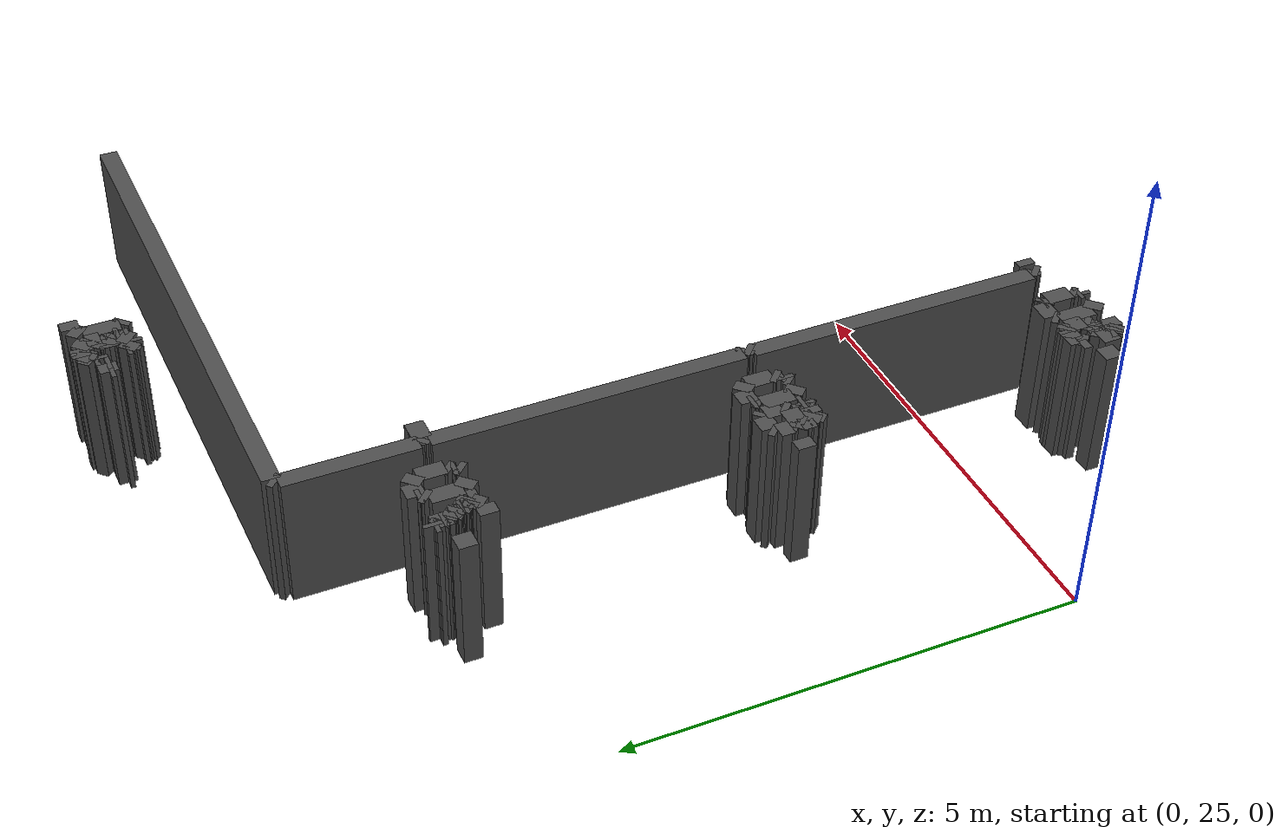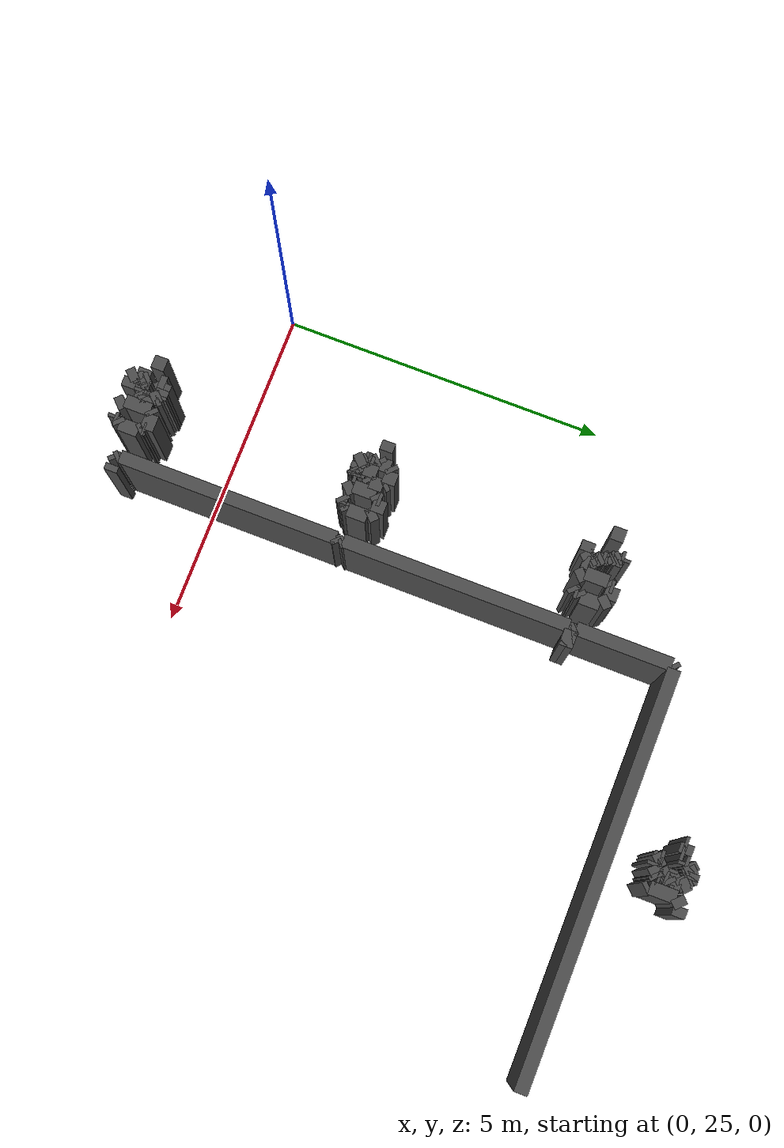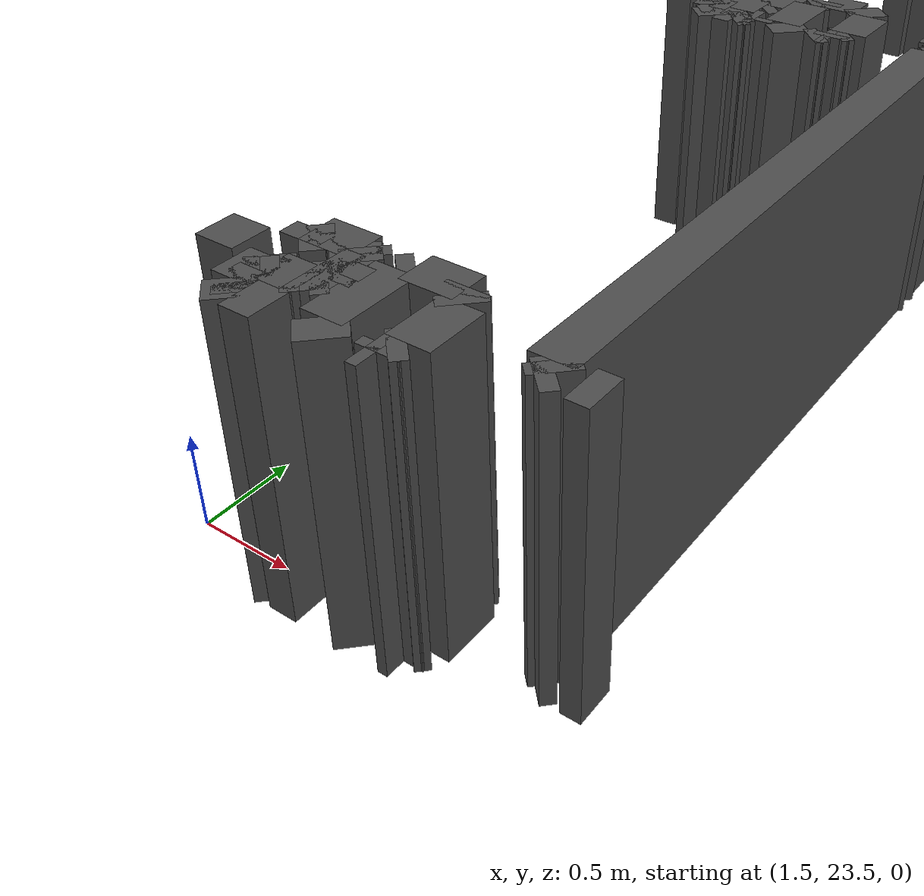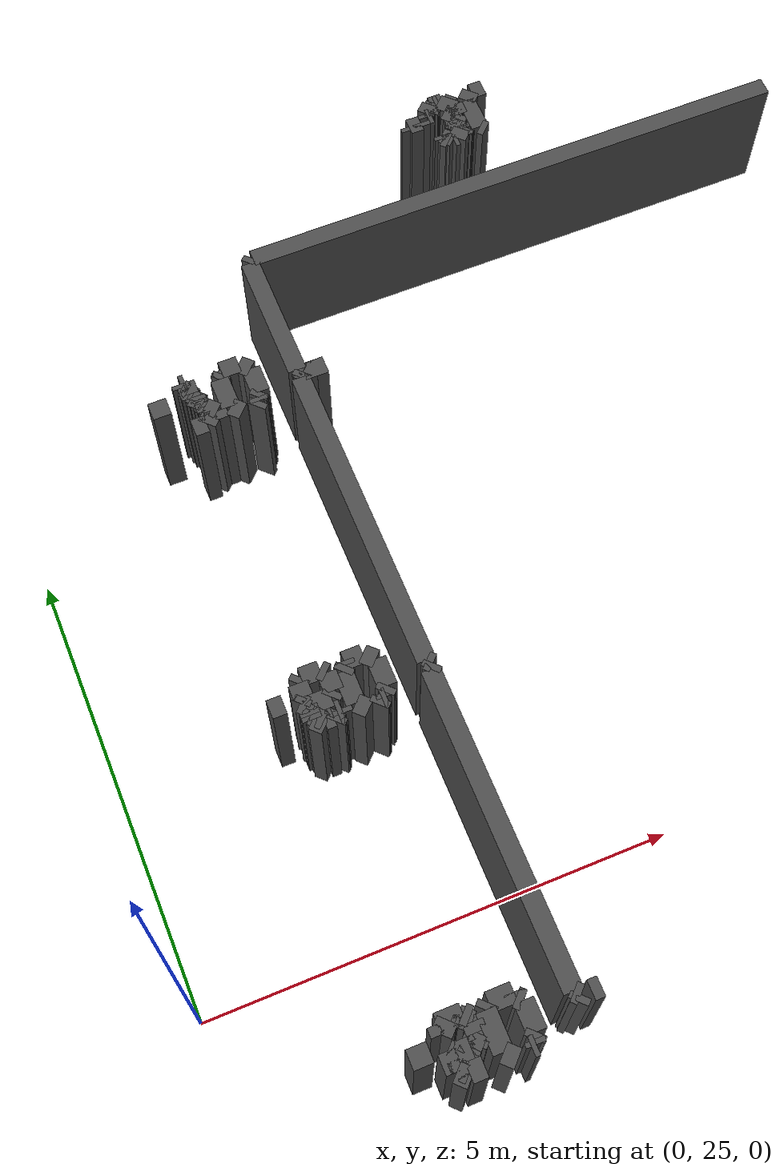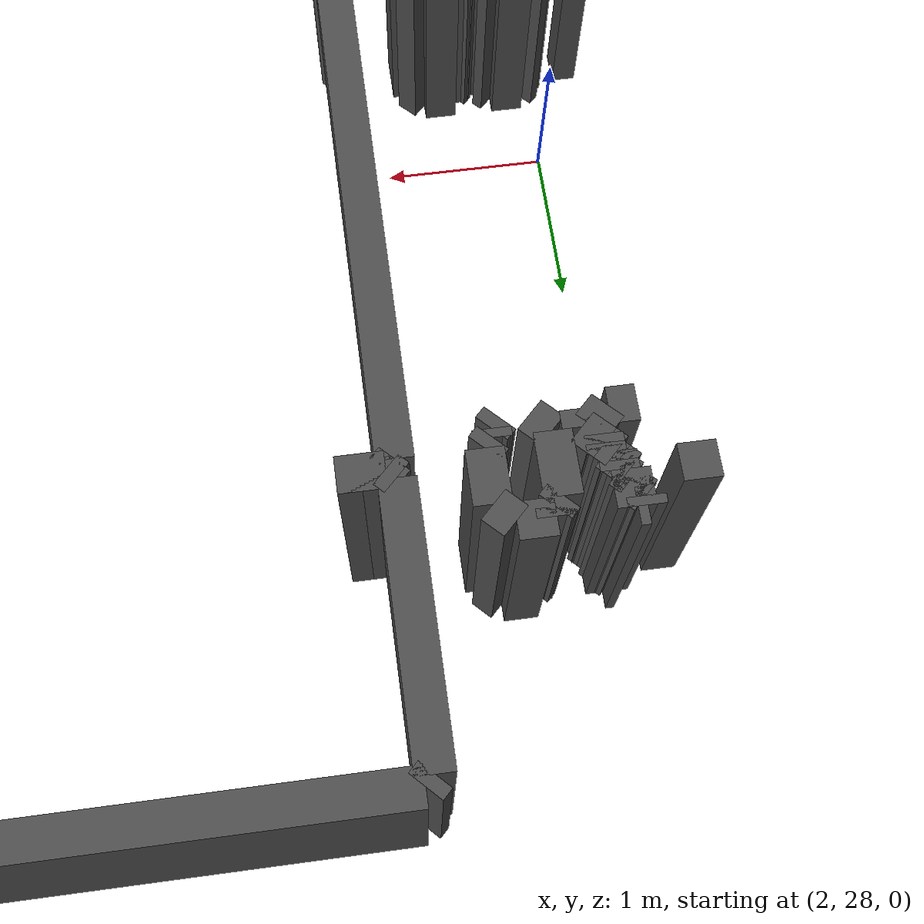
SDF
<sdf version="1.9">
 <model name="generated_walls">
  <static>true</static>
  <link name="wall_6_0">
   <pose>5.550 33.175 0.75 0 0 1.571</pose>
   <collision name="collision"><geometry><box><size>0.050 0.2 1.5</size></box></geometry></collision>
   <visual name="visual">
    <geometry><box><size>0.050 0.2 1.5</size></box></geometry>
    <material><ambient>0.3 0.3 0.3 1</ambient></material>
   </visual>
  </link>
  <link name="wall_6_1">
   <pose>5.625 33.200 0.75 0 0 0.000</pose>
   <collision name="collision"><geometry><box><size>0.150 0.2 1.5</size></box></geometry></collision>
   <visual name="visual">
    <geometry><box><size>0.150 0.2 1.5</size></box></geometry>
    <material><ambient>0.3 0.3 0.3 1</ambient></material>
   </visual>
  </link>
  <link name="wall_6_2">
   <pose>5.700 33.175 0.75 0 0 -1.571</pose>
   <collision name="collision"><geometry><box><size>0.050 0.2 1.5</size></box></geometry></collision>
   <visual name="visual">
    <geometry><box><size>0.050 0.2 1.5</size></box></geometry>
    <material><ambient>0.3 0.3 0.3 1</ambient></material>
   </visual>
  </link>
  <link name="wall_22_0">
   <pose>6.325 32.875 0.75 0 0 2.356</pose>
   <collision name="collision"><geometry><box><size>0.071 0.2 1.5</size></box></geometry></collision>
   <visual name="visual">
    <geometry><box><size>0.071 0.2 1.5</size></box></geometry>
    <material><ambient>0.3 0.3 0.3 1</ambient></material>
   </visual>
  </link>
  <link name="wall_22_1">
   <pose>6.300 33.100 0.75 0 0 1.571</pose>
   <collision name="collision"><geometry><box><size>0.400 0.2 1.5</size></box></geometry></collision>
   <visual name="visual">
    <geometry><box><size>0.400 0.2 1.5</size></box></geometry>
    <material><ambient>0.3 0.3 0.3 1</ambient></material>
   </visual>
  </link>
  <link name="wall_22_2">
   <pose>6.350 33.350 0.75 0 0 0.785</pose>
   <collision name="collision"><geometry><box><size>0.141 0.2 1.5</size></box></geometry></collision>
   <visual name="visual">
    <geometry><box><size>0.141 0.2 1.5</size></box></geometry>
    <material><ambient>0.3 0.3 0.3 1</ambient></material>
   </visual>
  </link>
  <link name="wall_22_3">
   <pose>6.475 33.400 0.75 0 0 0.000</pose>
   <collision name="collision"><geometry><box><size>0.150 0.2 1.5</size></box></geometry></collision>
   <visual name="visual">
    <geometry><box><size>0.150 0.2 1.5</size></box></geometry>
    <material><ambient>0.3 0.3 0.3 1</ambient></material>
   </visual>
  </link>
  <link name="wall_23_0">
   <pose>5.875 32.875 0.75 0 0 2.356</pose>
   <collision name="collision"><geometry><box><size>0.071 0.2 1.5</size></box></geometry></collision>
   <visual name="visual">
    <geometry><box><size>0.071 0.2 1.5</size></box></geometry>
    <material><ambient>0.3 0.3 0.3 1</ambient></material>
   </visual>
  </link>
  <link name="wall_23_1">
   <pose>5.850 32.925 0.75 0 0 1.571</pose>
   <collision name="collision"><geometry><box><size>0.050 0.2 1.5</size></box></geometry></collision>
   <visual name="visual">
    <geometry><box><size>0.050 0.2 1.5</size></box></geometry>
    <material><ambient>0.3 0.3 0.3 1</ambient></material>
   </visual>
  </link>
  <link name="wall_23_2">
   <pose>5.900 32.900 0.75 0 0 -0.785</pose>
   <collision name="collision"><geometry><box><size>0.141 0.2 1.5</size></box></geometry></collision>
   <visual name="visual">
    <geometry><box><size>0.141 0.2 1.5</size></box></geometry>
    <material><ambient>0.3 0.3 0.3 1</ambient></material>
   </visual>
  </link>
  <link name="wall_23_3">
   <pose>5.975 32.850 0.75 0 0 0.000</pose>
   <collision name="collision"><geometry><box><size>0.050 0.2 1.5</size></box></geometry></collision>
   <visual name="visual">
    <geometry><box><size>0.050 0.2 1.5</size></box></geometry>
    <material><ambient>0.3 0.3 0.3 1</ambient></material>
   </visual>
  </link>
  <link name="wall_23_4">
   <pose>6.050 32.900 0.75 0 0 0.785</pose>
   <collision name="collision"><geometry><box><size>0.141 0.2 1.5</size></box></geometry></collision>
   <visual name="visual">
    <geometry><box><size>0.141 0.2 1.5</size></box></geometry>
    <material><ambient>0.3 0.3 0.3 1</ambient></material>
   </visual>
  </link>
  <link name="wall_23_5">
   <pose>6.100 32.975 0.75 0 0 1.571</pose>
   <collision name="collision"><geometry><box><size>0.050 0.2 1.5</size></box></geometry></collision>
   <visual name="visual">
    <geometry><box><size>0.050 0.2 1.5</size></box></geometry>
    <material><ambient>0.3 0.3 0.3 1</ambient></material>
   </visual>
  </link>
  <link name="wall_23_6">
   <pose>6.050 33.050 0.75 0 0 2.356</pose>
   <collision name="collision"><geometry><box><size>0.141 0.2 1.5</size></box></geometry></collision>
   <visual name="visual">
    <geometry><box><size>0.141 0.2 1.5</size></box></geometry>
    <material><ambient>0.3 0.3 0.3 1</ambient></material>
   </visual>
  </link>
  <link name="wall_23_7">
   <pose>5.975 33.100 0.75 0 0 3.142</pose>
   <collision name="collision"><geometry><box><size>0.050 0.2 1.5</size></box></geometry></collision>
   <visual name="visual">
    <geometry><box><size>0.050 0.2 1.5</size></box></geometry>
    <material><ambient>0.3 0.3 0.3 1</ambient></material>
   </visual>
  </link>
  <link name="wall_23_8">
   <pose>5.975 33.100 0.75 0 0 0.000</pose>
   <collision name="collision"><geometry><box><size>0.050 0.2 1.5</size></box></geometry></collision>
   <visual name="visual">
    <geometry><box><size>0.050 0.2 1.5</size></box></geometry>
    <material><ambient>0.3 0.3 0.3 1</ambient></material>
   </visual>
  </link>
  <link name="wall_23_9">
   <pose>6.075 33.175 0.75 0 0 0.785</pose>
   <collision name="collision"><geometry><box><size>0.212 0.2 1.5</size></box></geometry></collision>
   <visual name="visual">
    <geometry><box><size>0.212 0.2 1.5</size></box></geometry>
    <material><ambient>0.3 0.3 0.3 1</ambient></material>
   </visual>
  </link>
  <link name="wall_23_10">
   <pose>6.075 33.325 0.75 0 0 2.356</pose>
   <collision name="collision"><geometry><box><size>0.212 0.2 1.5</size></box></geometry></collision>
   <visual name="visual">
    <geometry><box><size>0.212 0.2 1.5</size></box></geometry>
    <material><ambient>0.3 0.3 0.3 1</ambient></material>
   </visual>
  </link>
  <link name="wall_23_11">
   <pose>5.975 33.400 0.75 0 0 3.142</pose>
   <collision name="collision"><geometry><box><size>0.050 0.2 1.5</size></box></geometry></collision>
   <visual name="visual">
    <geometry><box><size>0.050 0.2 1.5</size></box></geometry>
    <material><ambient>0.3 0.3 0.3 1</ambient></material>
   </visual>
  </link>
  <link name="wall_23_12">
   <pose>5.900 33.350 0.75 0 0 -2.356</pose>
   <collision name="collision"><geometry><box><size>0.141 0.2 1.5</size></box></geometry></collision>
   <visual name="visual">
    <geometry><box><size>0.141 0.2 1.5</size></box></geometry>
    <material><ambient>0.3 0.3 0.3 1</ambient></material>
   </visual>
  </link>
  <link name="wall_23_13">
   <pose>5.850 33.275 0.75 0 0 -1.571</pose>
   <collision name="collision"><geometry><box><size>0.050 0.2 1.5</size></box></geometry></collision>
   <visual name="visual">
    <geometry><box><size>0.050 0.2 1.5</size></box></geometry>
    <material><ambient>0.3 0.3 0.3 1</ambient></material>
   </visual>
  </link>
  <link name="wall_23_14">
   <pose>5.825 33.250 0.75 0 0 3.142</pose>
   <collision name="collision"><geometry><box><size>0.050 0.2 1.5</size></box></geometry></collision>
   <visual name="visual">
    <geometry><box><size>0.050 0.2 1.5</size></box></geometry>
    <material><ambient>0.3 0.3 0.3 1</ambient></material>
   </visual>
  </link>
  <link name="wall_23_15">
   <pose>5.800 33.275 0.75 0 0 1.571</pose>
   <collision name="collision"><geometry><box><size>0.050 0.2 1.5</size></box></geometry></collision>
   <visual name="visual">
    <geometry><box><size>0.050 0.2 1.5</size></box></geometry>
    <material><ambient>0.3 0.3 0.3 1</ambient></material>
   </visual>
  </link>
  <link name="wall_23_16">
   <pose>5.850 33.350 0.75 0 0 0.785</pose>
   <collision name="collision"><geometry><box><size>0.141 0.2 1.5</size></box></geometry></collision>
   <visual name="visual">
    <geometry><box><size>0.141 0.2 1.5</size></box></geometry>
    <material><ambient>0.3 0.3 0.3 1</ambient></material>
   </visual>
  </link>
  <link name="wall_23_17">
   <pose>5.975 33.400 0.75 0 0 0.000</pose>
   <collision name="collision"><geometry><box><size>0.150 0.2 1.5</size></box></geometry></collision>
   <visual name="visual">
    <geometry><box><size>0.150 0.2 1.5</size></box></geometry>
    <material><ambient>0.3 0.3 0.3 1</ambient></material>
   </visual>
  </link>
  <link name="wall_23_18">
   <pose>6.100 33.350 0.75 0 0 -0.785</pose>
   <collision name="collision"><geometry><box><size>0.141 0.2 1.5</size></box></geometry></collision>
   <visual name="visual">
    <geometry><box><size>0.141 0.2 1.5</size></box></geometry>
    <material><ambient>0.3 0.3 0.3 1</ambient></material>
   </visual>
  </link>
  <link name="wall_23_19">
   <pose>6.150 33.225 0.75 0 0 -1.571</pose>
   <collision name="collision"><geometry><box><size>0.150 0.2 1.5</size></box></geometry></collision>
   <visual name="visual">
    <geometry><box><size>0.150 0.2 1.5</size></box></geometry>
    <material><ambient>0.3 0.3 0.3 1</ambient></material>
   </visual>
  </link>
  <link name="wall_23_20">
   <pose>6.125 33.125 0.75 0 0 -2.356</pose>
   <collision name="collision"><geometry><box><size>0.071 0.2 1.5</size></box></geometry></collision>
   <visual name="visual">
    <geometry><box><size>0.071 0.2 1.5</size></box></geometry>
    <material><ambient>0.3 0.3 0.3 1</ambient></material>
   </visual>
  </link>
  <link name="wall_23_21">
   <pose>6.100 33.075 0.75 0 0 -1.571</pose>
   <collision name="collision"><geometry><box><size>0.050 0.2 1.5</size></box></geometry></collision>
   <visual name="visual">
    <geometry><box><size>0.050 0.2 1.5</size></box></geometry>
    <material><ambient>0.3 0.3 0.3 1</ambient></material>
   </visual>
  </link>
  <link name="wall_23_22">
   <pose>6.125 33.025 0.75 0 0 -0.785</pose>
   <collision name="collision"><geometry><box><size>0.071 0.2 1.5</size></box></geometry></collision>
   <visual name="visual">
    <geometry><box><size>0.071 0.2 1.5</size></box></geometry>
    <material><ambient>0.3 0.3 0.3 1</ambient></material>
   </visual>
  </link>
  <link name="wall_23_23">
   <pose>6.150 32.975 0.75 0 0 -1.571</pose>
   <collision name="collision"><geometry><box><size>0.050 0.2 1.5</size></box></geometry></collision>
   <visual name="visual">
    <geometry><box><size>0.050 0.2 1.5</size></box></geometry>
    <material><ambient>0.3 0.3 0.3 1</ambient></material>
   </visual>
  </link>
  <link name="wall_23_24">
   <pose>6.125 32.925 0.75 0 0 -2.356</pose>
   <collision name="collision"><geometry><box><size>0.071 0.2 1.5</size></box></geometry></collision>
   <visual name="visual">
    <geometry><box><size>0.071 0.2 1.5</size></box></geometry>
    <material><ambient>0.3 0.3 0.3 1</ambient></material>
   </visual>
  </link>
  <link name="wall_23_25">
   <pose>6.100 32.875 0.75 0 0 -1.571</pose>
   <collision name="collision"><geometry><box><size>0.050 0.2 1.5</size></box></geometry></collision>
   <visual name="visual">
    <geometry><box><size>0.050 0.2 1.5</size></box></geometry>
    <material><ambient>0.3 0.3 0.3 1</ambient></material>
   </visual>
  </link>
  <link name="wall_38_0">
   <pose>1.750 30.800 0.75 0 0 0.000</pose>
   <collision name="collision"><geometry><box><size>0.200 0.2 1.5</size></box></geometry></collision>
   <visual name="visual">
    <geometry><box><size>0.200 0.2 1.5</size></box></geometry>
    <material><ambient>0.3 0.3 0.3 1</ambient></material>
   </visual>
  </link>
  <link name="wall_44_0">
   <pose>2.500 30.500 0.75 0 0 2.356</pose>
   <collision name="collision"><geometry><box><size>0.141 0.2 1.5</size></box></geometry></collision>
   <visual name="visual">
    <geometry><box><size>0.141 0.2 1.5</size></box></geometry>
    <material><ambient>0.3 0.3 0.3 1</ambient></material>
   </visual>
  </link>
  <link name="wall_44_1">
   <pose>2.450 30.725 0.75 0 0 1.571</pose>
   <collision name="collision"><geometry><box><size>0.350 0.2 1.5</size></box></geometry></collision>
   <visual name="visual">
    <geometry><box><size>0.350 0.2 1.5</size></box></geometry>
    <material><ambient>0.3 0.3 0.3 1</ambient></material>
   </visual>
  </link>
  <link name="wall_44_2">
   <pose>2.475 30.925 0.75 0 0 0.785</pose>
   <collision name="collision"><geometry><box><size>0.071 0.2 1.5</size></box></geometry></collision>
   <visual name="visual">
    <geometry><box><size>0.071 0.2 1.5</size></box></geometry>
    <material><ambient>0.3 0.3 0.3 1</ambient></material>
   </visual>
  </link>
  <link name="wall_44_3">
   <pose>2.500 30.975 0.75 0 0 1.571</pose>
   <collision name="collision"><geometry><box><size>0.050 0.2 1.5</size></box></geometry></collision>
   <visual name="visual">
    <geometry><box><size>0.050 0.2 1.5</size></box></geometry>
    <material><ambient>0.3 0.3 0.3 1</ambient></material>
   </visual>
  </link>
  <link name="wall_44_4">
   <pose>2.600 31.000 0.75 0 0 0.000</pose>
   <collision name="collision"><geometry><box><size>0.200 0.2 1.5</size></box></geometry></collision>
   <visual name="visual">
    <geometry><box><size>0.200 0.2 1.5</size></box></geometry>
    <material><ambient>0.3 0.3 0.3 1</ambient></material>
   </visual>
  </link>
  <link name="wall_44_5">
   <pose>2.750 30.950 0.75 0 0 -0.785</pose>
   <collision name="collision"><geometry><box><size>0.141 0.2 1.5</size></box></geometry></collision>
   <visual name="visual">
    <geometry><box><size>0.141 0.2 1.5</size></box></geometry>
    <material><ambient>0.3 0.3 0.3 1</ambient></material>
   </visual>
  </link>
  <link name="wall_44_6">
   <pose>2.800 30.750 0.75 0 0 -1.571</pose>
   <collision name="collision"><geometry><box><size>0.300 0.2 1.5</size></box></geometry></collision>
   <visual name="visual">
    <geometry><box><size>0.300 0.2 1.5</size></box></geometry>
    <material><ambient>0.3 0.3 0.3 1</ambient></material>
   </visual>
  </link>
  <link name="wall_44_7">
   <pose>2.775 30.575 0.75 0 0 -2.356</pose>
   <collision name="collision"><geometry><box><size>0.071 0.2 1.5</size></box></geometry></collision>
   <visual name="visual">
    <geometry><box><size>0.071 0.2 1.5</size></box></geometry>
    <material><ambient>0.3 0.3 0.3 1</ambient></material>
   </visual>
  </link>
  <link name="wall_44_8">
   <pose>2.750 30.525 0.75 0 0 -1.571</pose>
   <collision name="collision"><geometry><box><size>0.050 0.2 1.5</size></box></geometry></collision>
   <visual name="visual">
    <geometry><box><size>0.050 0.2 1.5</size></box></geometry>
    <material><ambient>0.3 0.3 0.3 1</ambient></material>
   </visual>
  </link>
  <link name="wall_44_9">
   <pose>2.725 30.475 0.75 0 0 -2.356</pose>
   <collision name="collision"><geometry><box><size>0.071 0.2 1.5</size></box></geometry></collision>
   <visual name="visual">
    <geometry><box><size>0.071 0.2 1.5</size></box></geometry>
    <material><ambient>0.3 0.3 0.3 1</ambient></material>
   </visual>
  </link>
  <link name="wall_45_0">
   <pose>2.075 30.450 0.75 0 0 0.000</pose>
   <collision name="collision"><geometry><box><size>0.150 0.2 1.5</size></box></geometry></collision>
   <visual name="visual">
    <geometry><box><size>0.150 0.2 1.5</size></box></geometry>
    <material><ambient>0.3 0.3 0.3 1</ambient></material>
   </visual>
  </link>
  <link name="wall_45_1">
   <pose>2.200 30.500 0.75 0 0 0.785</pose>
   <collision name="collision"><geometry><box><size>0.141 0.2 1.5</size></box></geometry></collision>
   <visual name="visual">
    <geometry><box><size>0.141 0.2 1.5</size></box></geometry>
    <material><ambient>0.3 0.3 0.3 1</ambient></material>
   </visual>
  </link>
  <link name="wall_45_2">
   <pose>2.225 30.575 0.75 0 0 2.356</pose>
   <collision name="collision"><geometry><box><size>0.071 0.2 1.5</size></box></geometry></collision>
   <visual name="visual">
    <geometry><box><size>0.071 0.2 1.5</size></box></geometry>
    <material><ambient>0.3 0.3 0.3 1</ambient></material>
   </visual>
  </link>
  <link name="wall_45_3">
   <pose>2.200 30.625 0.75 0 0 1.571</pose>
   <collision name="collision"><geometry><box><size>0.050 0.2 1.5</size></box></geometry></collision>
   <visual name="visual">
    <geometry><box><size>0.050 0.2 1.5</size></box></geometry>
    <material><ambient>0.3 0.3 0.3 1</ambient></material>
   </visual>
  </link>
  <link name="wall_45_4">
   <pose>2.175 30.675 0.75 0 0 2.356</pose>
   <collision name="collision"><geometry><box><size>0.071 0.2 1.5</size></box></geometry></collision>
   <visual name="visual">
    <geometry><box><size>0.071 0.2 1.5</size></box></geometry>
    <material><ambient>0.3 0.3 0.3 1</ambient></material>
   </visual>
  </link>
  <link name="wall_45_5">
   <pose>2.150 30.725 0.75 0 0 1.571</pose>
   <collision name="collision"><geometry><box><size>0.050 0.2 1.5</size></box></geometry></collision>
   <visual name="visual">
    <geometry><box><size>0.050 0.2 1.5</size></box></geometry>
    <material><ambient>0.3 0.3 0.3 1</ambient></material>
   </visual>
  </link>
  <link name="wall_45_6">
   <pose>2.125 30.775 0.75 0 0 2.356</pose>
   <collision name="collision"><geometry><box><size>0.071 0.2 1.5</size></box></geometry></collision>
   <visual name="visual">
    <geometry><box><size>0.071 0.2 1.5</size></box></geometry>
    <material><ambient>0.3 0.3 0.3 1</ambient></material>
   </visual>
  </link>
  <link name="wall_45_7">
   <pose>2.100 30.850 0.75 0 0 1.571</pose>
   <collision name="collision"><geometry><box><size>0.100 0.2 1.5</size></box></geometry></collision>
   <visual name="visual">
    <geometry><box><size>0.100 0.2 1.5</size></box></geometry>
    <material><ambient>0.3 0.3 0.3 1</ambient></material>
   </visual>
  </link>
  <link name="wall_45_8">
   <pose>2.075 30.925 0.75 0 0 2.356</pose>
   <collision name="collision"><geometry><box><size>0.071 0.2 1.5</size></box></geometry></collision>
   <visual name="visual">
    <geometry><box><size>0.071 0.2 1.5</size></box></geometry>
    <material><ambient>0.3 0.3 0.3 1</ambient></material>
   </visual>
  </link>
  <link name="wall_45_9">
   <pose>2.050 30.975 0.75 0 0 1.571</pose>
   <collision name="collision"><geometry><box><size>0.050 0.2 1.5</size></box></geometry></collision>
   <visual name="visual">
    <geometry><box><size>0.050 0.2 1.5</size></box></geometry>
    <material><ambient>0.3 0.3 0.3 1</ambient></material>
   </visual>
  </link>
  <link name="wall_45_10">
   <pose>2.075 31.000 0.75 0 0 0.000</pose>
   <collision name="collision"><geometry><box><size>0.050 0.2 1.5</size></box></geometry></collision>
   <visual name="visual">
    <geometry><box><size>0.050 0.2 1.5</size></box></geometry>
    <material><ambient>0.3 0.3 0.3 1</ambient></material>
   </visual>
  </link>
  <link name="wall_45_11">
   <pose>2.100 30.925 0.75 0 0 -1.571</pose>
   <collision name="collision"><geometry><box><size>0.150 0.2 1.5</size></box></geometry></collision>
   <visual name="visual">
    <geometry><box><size>0.150 0.2 1.5</size></box></geometry>
    <material><ambient>0.3 0.3 0.3 1</ambient></material>
   </visual>
  </link>
  <link name="wall_45_12">
   <pose>2.125 30.825 0.75 0 0 -0.785</pose>
   <collision name="collision"><geometry><box><size>0.071 0.2 1.5</size></box></geometry></collision>
   <visual name="visual">
    <geometry><box><size>0.071 0.2 1.5</size></box></geometry>
    <material><ambient>0.3 0.3 0.3 1</ambient></material>
   </visual>
  </link>
  <link name="wall_45_13">
   <pose>2.150 30.775 0.75 0 0 -1.571</pose>
   <collision name="collision"><geometry><box><size>0.050 0.2 1.5</size></box></geometry></collision>
   <visual name="visual">
    <geometry><box><size>0.050 0.2 1.5</size></box></geometry>
    <material><ambient>0.3 0.3 0.3 1</ambient></material>
   </visual>
  </link>
  <link name="wall_45_14">
   <pose>2.175 30.725 0.75 0 0 -0.785</pose>
   <collision name="collision"><geometry><box><size>0.071 0.2 1.5</size></box></geometry></collision>
   <visual name="visual">
    <geometry><box><size>0.071 0.2 1.5</size></box></geometry>
    <material><ambient>0.3 0.3 0.3 1</ambient></material>
   </visual>
  </link>
  <link name="wall_45_15">
   <pose>2.200 30.675 0.75 0 0 -1.571</pose>
   <collision name="collision"><geometry><box><size>0.050 0.2 1.5</size></box></geometry></collision>
   <visual name="visual">
    <geometry><box><size>0.050 0.2 1.5</size></box></geometry>
    <material><ambient>0.3 0.3 0.3 1</ambient></material>
   </visual>
  </link>
  <link name="wall_45_16">
   <pose>2.250 30.600 0.75 0 0 -0.785</pose>
   <collision name="collision"><geometry><box><size>0.141 0.2 1.5</size></box></geometry></collision>
   <visual name="visual">
    <geometry><box><size>0.141 0.2 1.5</size></box></geometry>
    <material><ambient>0.3 0.3 0.3 1</ambient></material>
   </visual>
  </link>
  <link name="wall_45_17">
   <pose>2.300 30.500 0.75 0 0 -1.571</pose>
   <collision name="collision"><geometry><box><size>0.100 0.2 1.5</size></box></geometry></collision>
   <visual name="visual">
    <geometry><box><size>0.100 0.2 1.5</size></box></geometry>
    <material><ambient>0.3 0.3 0.3 1</ambient></material>
   </visual>
  </link>
  <link name="wall_73_0">
   <pose>1.725 27.250 0.75 0 0 0.000</pose>
   <collision name="collision"><geometry><box><size>0.150 0.2 1.5</size></box></geometry></collision>
   <visual name="visual">
    <geometry><box><size>0.150 0.2 1.5</size></box></geometry>
    <material><ambient>0.3 0.3 0.3 1</ambient></material>
   </visual>
  </link>
  <link name="wall_74_0">
   <pose>2.500 26.950 0.75 0 0 2.356</pose>
   <collision name="collision"><geometry><box><size>0.141 0.2 1.5</size></box></geometry></collision>
   <visual name="visual">
    <geometry><box><size>0.141 0.2 1.5</size></box></geometry>
    <material><ambient>0.3 0.3 0.3 1</ambient></material>
   </visual>
  </link>
  <link name="wall_74_1">
   <pose>2.450 27.175 0.75 0 0 1.571</pose>
   <collision name="collision"><geometry><box><size>0.350 0.2 1.5</size></box></geometry></collision>
   <visual name="visual">
    <geometry><box><size>0.350 0.2 1.5</size></box></geometry>
    <material><ambient>0.3 0.3 0.3 1</ambient></material>
   </visual>
  </link>
  <link name="wall_74_2">
   <pose>2.475 27.375 0.75 0 0 0.785</pose>
   <collision name="collision"><geometry><box><size>0.071 0.2 1.5</size></box></geometry></collision>
   <visual name="visual">
    <geometry><box><size>0.071 0.2 1.5</size></box></geometry>
    <material><ambient>0.3 0.3 0.3 1</ambient></material>
   </visual>
  </link>
  <link name="wall_74_3">
   <pose>2.500 27.425 0.75 0 0 1.571</pose>
   <collision name="collision"><geometry><box><size>0.050 0.2 1.5</size></box></geometry></collision>
   <visual name="visual">
    <geometry><box><size>0.050 0.2 1.5</size></box></geometry>
    <material><ambient>0.3 0.3 0.3 1</ambient></material>
   </visual>
  </link>
  <link name="wall_74_4">
   <pose>2.600 27.450 0.75 0 0 0.000</pose>
   <collision name="collision"><geometry><box><size>0.200 0.2 1.5</size></box></geometry></collision>
   <visual name="visual">
    <geometry><box><size>0.200 0.2 1.5</size></box></geometry>
    <material><ambient>0.3 0.3 0.3 1</ambient></material>
   </visual>
  </link>
  <link name="wall_74_5">
   <pose>2.750 27.400 0.75 0 0 -0.785</pose>
   <collision name="collision"><geometry><box><size>0.141 0.2 1.5</size></box></geometry></collision>
   <visual name="visual">
    <geometry><box><size>0.141 0.2 1.5</size></box></geometry>
    <material><ambient>0.3 0.3 0.3 1</ambient></material>
   </visual>
  </link>
  <link name="wall_74_6">
   <pose>2.800 27.200 0.75 0 0 -1.571</pose>
   <collision name="collision"><geometry><box><size>0.300 0.2 1.5</size></box></geometry></collision>
   <visual name="visual">
    <geometry><box><size>0.300 0.2 1.5</size></box></geometry>
    <material><ambient>0.3 0.3 0.3 1</ambient></material>
   </visual>
  </link>
  <link name="wall_74_7">
   <pose>2.775 27.025 0.75 0 0 -2.356</pose>
   <collision name="collision"><geometry><box><size>0.071 0.2 1.5</size></box></geometry></collision>
   <visual name="visual">
    <geometry><box><size>0.071 0.2 1.5</size></box></geometry>
    <material><ambient>0.3 0.3 0.3 1</ambient></material>
   </visual>
  </link>
  <link name="wall_74_8">
   <pose>2.750 26.975 0.75 0 0 -1.571</pose>
   <collision name="collision"><geometry><box><size>0.050 0.2 1.5</size></box></geometry></collision>
   <visual name="visual">
    <geometry><box><size>0.050 0.2 1.5</size></box></geometry>
    <material><ambient>0.3 0.3 0.3 1</ambient></material>
   </visual>
  </link>
  <link name="wall_74_9">
   <pose>2.725 26.950 0.75 0 0 3.142</pose>
   <collision name="collision"><geometry><box><size>0.050 0.2 1.5</size></box></geometry></collision>
   <visual name="visual">
    <geometry><box><size>0.050 0.2 1.5</size></box></geometry>
    <material><ambient>0.3 0.3 0.3 1</ambient></material>
   </visual>
  </link>
  <link name="wall_74_10">
   <pose>2.675 26.925 0.75 0 0 -2.356</pose>
   <collision name="collision"><geometry><box><size>0.071 0.2 1.5</size></box></geometry></collision>
   <visual name="visual">
    <geometry><box><size>0.071 0.2 1.5</size></box></geometry>
    <material><ambient>0.3 0.3 0.3 1</ambient></material>
   </visual>
  </link>
  <link name="wall_75_0">
   <pose>2.050 26.950 0.75 0 0 2.356</pose>
   <collision name="collision"><geometry><box><size>0.141 0.2 1.5</size></box></geometry></collision>
   <visual name="visual">
    <geometry><box><size>0.141 0.2 1.5</size></box></geometry>
    <material><ambient>0.3 0.3 0.3 1</ambient></material>
   </visual>
  </link>
  <link name="wall_75_1">
   <pose>2.000 27.075 0.75 0 0 1.571</pose>
   <collision name="collision"><geometry><box><size>0.150 0.2 1.5</size></box></geometry></collision>
   <visual name="visual">
    <geometry><box><size>0.150 0.2 1.5</size></box></geometry>
    <material><ambient>0.3 0.3 0.3 1</ambient></material>
   </visual>
  </link>
  <link name="wall_75_2">
   <pose>1.975 27.175 0.75 0 0 2.356</pose>
   <collision name="collision"><geometry><box><size>0.071 0.2 1.5</size></box></geometry></collision>
   <visual name="visual">
    <geometry><box><size>0.071 0.2 1.5</size></box></geometry>
    <material><ambient>0.3 0.3 0.3 1</ambient></material>
   </visual>
  </link>
  <link name="wall_75_3">
   <pose>1.975 27.225 0.75 0 0 0.785</pose>
   <collision name="collision"><geometry><box><size>0.071 0.2 1.5</size></box></geometry></collision>
   <visual name="visual">
    <geometry><box><size>0.071 0.2 1.5</size></box></geometry>
    <material><ambient>0.3 0.3 0.3 1</ambient></material>
   </visual>
  </link>
  <link name="wall_75_4">
   <pose>2.000 27.325 0.75 0 0 1.571</pose>
   <collision name="collision"><geometry><box><size>0.150 0.2 1.5</size></box></geometry></collision>
   <visual name="visual">
    <geometry><box><size>0.150 0.2 1.5</size></box></geometry>
    <material><ambient>0.3 0.3 0.3 1</ambient></material>
   </visual>
  </link>
  <link name="wall_75_5">
   <pose>2.025 27.425 0.75 0 0 0.785</pose>
   <collision name="collision"><geometry><box><size>0.071 0.2 1.5</size></box></geometry></collision>
   <visual name="visual">
    <geometry><box><size>0.071 0.2 1.5</size></box></geometry>
    <material><ambient>0.3 0.3 0.3 1</ambient></material>
   </visual>
  </link>
  <link name="wall_75_6">
   <pose>2.150 27.450 0.75 0 0 0.000</pose>
   <collision name="collision"><geometry><box><size>0.200 0.2 1.5</size></box></geometry></collision>
   <visual name="visual">
    <geometry><box><size>0.200 0.2 1.5</size></box></geometry>
    <material><ambient>0.3 0.3 0.3 1</ambient></material>
   </visual>
  </link>
  <link name="wall_75_7">
   <pose>2.275 27.425 0.75 0 0 -0.785</pose>
   <collision name="collision"><geometry><box><size>0.071 0.2 1.5</size></box></geometry></collision>
   <visual name="visual">
    <geometry><box><size>0.071 0.2 1.5</size></box></geometry>
    <material><ambient>0.3 0.3 0.3 1</ambient></material>
   </visual>
  </link>
  <link name="wall_75_8">
   <pose>2.300 27.300 0.75 0 0 -1.571</pose>
   <collision name="collision"><geometry><box><size>0.200 0.2 1.5</size></box></geometry></collision>
   <visual name="visual">
    <geometry><box><size>0.200 0.2 1.5</size></box></geometry>
    <material><ambient>0.3 0.3 0.3 1</ambient></material>
   </visual>
  </link>
  <link name="wall_75_9">
   <pose>2.275 27.175 0.75 0 0 -2.356</pose>
   <collision name="collision"><geometry><box><size>0.071 0.2 1.5</size></box></geometry></collision>
   <visual name="visual">
    <geometry><box><size>0.071 0.2 1.5</size></box></geometry>
    <material><ambient>0.3 0.3 0.3 1</ambient></material>
   </visual>
  </link>
  <link name="wall_75_10">
   <pose>2.150 27.150 0.75 0 0 3.142</pose>
   <collision name="collision"><geometry><box><size>0.200 0.2 1.5</size></box></geometry></collision>
   <visual name="visual">
    <geometry><box><size>0.200 0.2 1.5</size></box></geometry>
    <material><ambient>0.3 0.3 0.3 1</ambient></material>
   </visual>
  </link>
  <link name="wall_75_11">
   <pose>2.025 27.125 0.75 0 0 -2.356</pose>
   <collision name="collision"><geometry><box><size>0.071 0.2 1.5</size></box></geometry></collision>
   <visual name="visual">
    <geometry><box><size>0.071 0.2 1.5</size></box></geometry>
    <material><ambient>0.3 0.3 0.3 1</ambient></material>
   </visual>
  </link>
  <link name="wall_75_12">
   <pose>2.000 27.075 0.75 0 0 -1.571</pose>
   <collision name="collision"><geometry><box><size>0.050 0.2 1.5</size></box></geometry></collision>
   <visual name="visual">
    <geometry><box><size>0.050 0.2 1.5</size></box></geometry>
    <material><ambient>0.3 0.3 0.3 1</ambient></material>
   </visual>
  </link>
  <link name="wall_75_13">
   <pose>2.050 27.000 0.75 0 0 -0.785</pose>
   <collision name="collision"><geometry><box><size>0.141 0.2 1.5</size></box></geometry></collision>
   <visual name="visual">
    <geometry><box><size>0.141 0.2 1.5</size></box></geometry>
    <material><ambient>0.3 0.3 0.3 1</ambient></material>
   </visual>
  </link>
  <link name="wall_75_14">
   <pose>2.150 26.950 0.75 0 0 0.000</pose>
   <collision name="collision"><geometry><box><size>0.100 0.2 1.5</size></box></geometry></collision>
   <visual name="visual">
    <geometry><box><size>0.100 0.2 1.5</size></box></geometry>
    <material><ambient>0.3 0.3 0.3 1</ambient></material>
   </visual>
  </link>
  <link name="wall_75_15">
   <pose>2.225 26.975 0.75 0 0 0.785</pose>
   <collision name="collision"><geometry><box><size>0.071 0.2 1.5</size></box></geometry></collision>
   <visual name="visual">
    <geometry><box><size>0.071 0.2 1.5</size></box></geometry>
    <material><ambient>0.3 0.3 0.3 1</ambient></material>
   </visual>
  </link>
  <link name="wall_75_16">
   <pose>2.275 27.000 0.75 0 0 0.000</pose>
   <collision name="collision"><geometry><box><size>0.050 0.2 1.5</size></box></geometry></collision>
   <visual name="visual">
    <geometry><box><size>0.050 0.2 1.5</size></box></geometry>
    <material><ambient>0.3 0.3 0.3 1</ambient></material>
   </visual>
  </link>
  <link name="wall_75_17">
   <pose>2.300 26.975 0.75 0 0 -1.571</pose>
   <collision name="collision"><geometry><box><size>0.050 0.2 1.5</size></box></geometry></collision>
   <visual name="visual">
    <geometry><box><size>0.050 0.2 1.5</size></box></geometry>
    <material><ambient>0.3 0.3 0.3 1</ambient></material>
   </visual>
  </link>
  <link name="wall_75_18">
   <pose>2.275 26.950 0.75 0 0 3.142</pose>
   <collision name="collision"><geometry><box><size>0.050 0.2 1.5</size></box></geometry></collision>
   <visual name="visual">
    <geometry><box><size>0.050 0.2 1.5</size></box></geometry>
    <material><ambient>0.3 0.3 0.3 1</ambient></material>
   </visual>
  </link>
  <link name="wall_75_19">
   <pose>2.225 26.925 0.75 0 0 -2.356</pose>
   <collision name="collision"><geometry><box><size>0.071 0.2 1.5</size></box></geometry></collision>
   <visual name="visual">
    <geometry><box><size>0.071 0.2 1.5</size></box></geometry>
    <material><ambient>0.3 0.3 0.3 1</ambient></material>
   </visual>
  </link>
  <link name="wall_76_0">
   <pose>1.750 23.700 0.75 0 0 0.000</pose>
   <collision name="collision"><geometry><box><size>0.200 0.2 1.5</size></box></geometry></collision>
   <visual name="visual">
    <geometry><box><size>0.200 0.2 1.5</size></box></geometry>
    <material><ambient>0.3 0.3 0.3 1</ambient></material>
   </visual>
  </link>
  <link name="wall_78_0">
   <pose>3.450 23.650 0.75 0 0 0.000</pose>
   <collision name="collision"><geometry><box><size>0.100 0.2 1.5</size></box></geometry></collision>
   <visual name="visual">
    <geometry><box><size>0.100 0.2 1.5</size></box></geometry>
    <material><ambient>0.3 0.3 0.3 1</ambient></material>
   </visual>
  </link>
  <link name="wall_79_0">
   <pose>2.500 23.400 0.75 0 0 2.356</pose>
   <collision name="collision"><geometry><box><size>0.141 0.2 1.5</size></box></geometry></collision>
   <visual name="visual">
    <geometry><box><size>0.141 0.2 1.5</size></box></geometry>
    <material><ambient>0.3 0.3 0.3 1</ambient></material>
   </visual>
  </link>
  <link name="wall_79_1">
   <pose>2.450 23.650 0.75 0 0 1.571</pose>
   <collision name="collision"><geometry><box><size>0.400 0.2 1.5</size></box></geometry></collision>
   <visual name="visual">
    <geometry><box><size>0.400 0.2 1.5</size></box></geometry>
    <material><ambient>0.3 0.3 0.3 1</ambient></material>
   </visual>
  </link>
  <link name="wall_79_2">
   <pose>2.475 23.875 0.75 0 0 0.785</pose>
   <collision name="collision"><geometry><box><size>0.071 0.2 1.5</size></box></geometry></collision>
   <visual name="visual">
    <geometry><box><size>0.071 0.2 1.5</size></box></geometry>
    <material><ambient>0.3 0.3 0.3 1</ambient></material>
   </visual>
  </link>
  <link name="wall_79_3">
   <pose>2.625 23.900 0.75 0 0 0.000</pose>
   <collision name="collision"><geometry><box><size>0.250 0.2 1.5</size></box></geometry></collision>
   <visual name="visual">
    <geometry><box><size>0.250 0.2 1.5</size></box></geometry>
    <material><ambient>0.3 0.3 0.3 1</ambient></material>
   </visual>
  </link>
  <link name="wall_79_4">
   <pose>2.750 23.875 0.75 0 0 -1.571</pose>
   <collision name="collision"><geometry><box><size>0.050 0.2 1.5</size></box></geometry></collision>
   <visual name="visual">
    <geometry><box><size>0.050 0.2 1.5</size></box></geometry>
    <material><ambient>0.3 0.3 0.3 1</ambient></material>
   </visual>
  </link>
  <link name="wall_79_5">
   <pose>2.775 23.825 0.75 0 0 -0.785</pose>
   <collision name="collision"><geometry><box><size>0.071 0.2 1.5</size></box></geometry></collision>
   <visual name="visual">
    <geometry><box><size>0.071 0.2 1.5</size></box></geometry>
    <material><ambient>0.3 0.3 0.3 1</ambient></material>
   </visual>
  </link>
  <link name="wall_79_6">
   <pose>2.800 23.650 0.75 0 0 -1.571</pose>
   <collision name="collision"><geometry><box><size>0.300 0.2 1.5</size></box></geometry></collision>
   <visual name="visual">
    <geometry><box><size>0.300 0.2 1.5</size></box></geometry>
    <material><ambient>0.3 0.3 0.3 1</ambient></material>
   </visual>
  </link>
  <link name="wall_79_7">
   <pose>2.775 23.475 0.75 0 0 -2.356</pose>
   <collision name="collision"><geometry><box><size>0.071 0.2 1.5</size></box></geometry></collision>
   <visual name="visual">
    <geometry><box><size>0.071 0.2 1.5</size></box></geometry>
    <material><ambient>0.3 0.3 0.3 1</ambient></material>
   </visual>
  </link>
  <link name="wall_79_8">
   <pose>2.750 23.425 0.75 0 0 -1.571</pose>
   <collision name="collision"><geometry><box><size>0.050 0.2 1.5</size></box></geometry></collision>
   <visual name="visual">
    <geometry><box><size>0.050 0.2 1.5</size></box></geometry>
    <material><ambient>0.3 0.3 0.3 1</ambient></material>
   </visual>
  </link>
  <link name="wall_79_9">
   <pose>2.725 23.400 0.75 0 0 3.142</pose>
   <collision name="collision"><geometry><box><size>0.050 0.2 1.5</size></box></geometry></collision>
   <visual name="visual">
    <geometry><box><size>0.050 0.2 1.5</size></box></geometry>
    <material><ambient>0.3 0.3 0.3 1</ambient></material>
   </visual>
  </link>
  <link name="wall_80_0">
   <pose>2.050 23.400 0.75 0 0 2.356</pose>
   <collision name="collision"><geometry><box><size>0.141 0.2 1.5</size></box></geometry></collision>
   <visual name="visual">
    <geometry><box><size>0.141 0.2 1.5</size></box></geometry>
    <material><ambient>0.3 0.3 0.3 1</ambient></material>
   </visual>
  </link>
  <link name="wall_80_1">
   <pose>2.000 23.550 0.75 0 0 1.571</pose>
   <collision name="collision"><geometry><box><size>0.200 0.2 1.5</size></box></geometry></collision>
   <visual name="visual">
    <geometry><box><size>0.200 0.2 1.5</size></box></geometry>
    <material><ambient>0.3 0.3 0.3 1</ambient></material>
   </visual>
  </link>
  <link name="wall_80_2">
   <pose>2.025 23.625 0.75 0 0 -0.785</pose>
   <collision name="collision"><geometry><box><size>0.071 0.2 1.5</size></box></geometry></collision>
   <visual name="visual">
    <geometry><box><size>0.071 0.2 1.5</size></box></geometry>
    <material><ambient>0.3 0.3 0.3 1</ambient></material>
   </visual>
  </link>
  <link name="wall_80_3">
   <pose>2.125 23.600 0.75 0 0 0.000</pose>
   <collision name="collision"><geometry><box><size>0.150 0.2 1.5</size></box></geometry></collision>
   <visual name="visual">
    <geometry><box><size>0.150 0.2 1.5</size></box></geometry>
    <material><ambient>0.3 0.3 0.3 1</ambient></material>
   </visual>
  </link>
  <link name="wall_80_4">
   <pose>2.250 23.650 0.75 0 0 0.785</pose>
   <collision name="collision"><geometry><box><size>0.141 0.2 1.5</size></box></geometry></collision>
   <visual name="visual">
    <geometry><box><size>0.141 0.2 1.5</size></box></geometry>
    <material><ambient>0.3 0.3 0.3 1</ambient></material>
   </visual>
  </link>
  <link name="wall_80_5">
   <pose>2.300 23.750 0.75 0 0 1.571</pose>
   <collision name="collision"><geometry><box><size>0.100 0.2 1.5</size></box></geometry></collision>
   <visual name="visual">
    <geometry><box><size>0.100 0.2 1.5</size></box></geometry>
    <material><ambient>0.3 0.3 0.3 1</ambient></material>
   </visual>
  </link>
  <link name="wall_80_6">
   <pose>2.250 23.850 0.75 0 0 2.356</pose>
   <collision name="collision"><geometry><box><size>0.141 0.2 1.5</size></box></geometry></collision>
   <visual name="visual">
    <geometry><box><size>0.141 0.2 1.5</size></box></geometry>
    <material><ambient>0.3 0.3 0.3 1</ambient></material>
   </visual>
  </link>
  <link name="wall_80_7">
   <pose>2.150 23.900 0.75 0 0 3.142</pose>
   <collision name="collision"><geometry><box><size>0.100 0.2 1.5</size></box></geometry></collision>
   <visual name="visual">
    <geometry><box><size>0.100 0.2 1.5</size></box></geometry>
    <material><ambient>0.3 0.3 0.3 1</ambient></material>
   </visual>
  </link>
  <link name="wall_80_8">
   <pose>2.050 23.850 0.75 0 0 -2.356</pose>
   <collision name="collision"><geometry><box><size>0.141 0.2 1.5</size></box></geometry></collision>
   <visual name="visual">
    <geometry><box><size>0.141 0.2 1.5</size></box></geometry>
    <material><ambient>0.3 0.3 0.3 1</ambient></material>
   </visual>
  </link>
  <link name="wall_80_9">
   <pose>2.000 23.850 0.75 0 0 1.571</pose>
   <collision name="collision"><geometry><box><size>0.100 0.2 1.5</size></box></geometry></collision>
   <visual name="visual">
    <geometry><box><size>0.100 0.2 1.5</size></box></geometry>
    <material><ambient>0.3 0.3 0.3 1</ambient></material>
   </visual>
  </link>
  <link name="wall_80_10">
   <pose>2.125 23.900 0.75 0 0 0.000</pose>
   <collision name="collision"><geometry><box><size>0.250 0.2 1.5</size></box></geometry></collision>
   <visual name="visual">
    <geometry><box><size>0.250 0.2 1.5</size></box></geometry>
    <material><ambient>0.3 0.3 0.3 1</ambient></material>
   </visual>
  </link>
  <link name="wall_80_11">
   <pose>2.275 23.875 0.75 0 0 -0.785</pose>
   <collision name="collision"><geometry><box><size>0.071 0.2 1.5</size></box></geometry></collision>
   <visual name="visual">
    <geometry><box><size>0.071 0.2 1.5</size></box></geometry>
    <material><ambient>0.3 0.3 0.3 1</ambient></material>
   </visual>
  </link>
  <link name="wall_80_12">
   <pose>2.300 23.750 0.75 0 0 -1.571</pose>
   <collision name="collision"><geometry><box><size>0.200 0.2 1.5</size></box></geometry></collision>
   <visual name="visual">
    <geometry><box><size>0.200 0.2 1.5</size></box></geometry>
    <material><ambient>0.3 0.3 0.3 1</ambient></material>
   </visual>
  </link>
  <link name="wall_80_13">
   <pose>2.275 23.625 0.75 0 0 -2.356</pose>
   <collision name="collision"><geometry><box><size>0.071 0.2 1.5</size></box></geometry></collision>
   <visual name="visual">
    <geometry><box><size>0.071 0.2 1.5</size></box></geometry>
    <material><ambient>0.3 0.3 0.3 1</ambient></material>
   </visual>
  </link>
  <link name="wall_80_14">
   <pose>2.225 23.600 0.75 0 0 3.142</pose>
   <collision name="collision"><geometry><box><size>0.050 0.2 1.5</size></box></geometry></collision>
   <visual name="visual">
    <geometry><box><size>0.050 0.2 1.5</size></box></geometry>
    <material><ambient>0.3 0.3 0.3 1</ambient></material>
   </visual>
  </link>
  <link name="wall_80_15">
   <pose>2.175 23.575 0.75 0 0 -2.356</pose>
   <collision name="collision"><geometry><box><size>0.071 0.2 1.5</size></box></geometry></collision>
   <visual name="visual">
    <geometry><box><size>0.071 0.2 1.5</size></box></geometry>
    <material><ambient>0.3 0.3 0.3 1</ambient></material>
   </visual>
  </link>
  <link name="wall_80_16">
   <pose>2.125 23.575 0.75 0 0 2.356</pose>
   <collision name="collision"><geometry><box><size>0.071 0.2 1.5</size></box></geometry></collision>
   <visual name="visual">
    <geometry><box><size>0.071 0.2 1.5</size></box></geometry>
    <material><ambient>0.3 0.3 0.3 1</ambient></material>
   </visual>
  </link>
  <link name="wall_80_17">
   <pose>2.075 23.575 0.75 0 0 -2.356</pose>
   <collision name="collision"><geometry><box><size>0.071 0.2 1.5</size></box></geometry></collision>
   <visual name="visual">
    <geometry><box><size>0.071 0.2 1.5</size></box></geometry>
    <material><ambient>0.3 0.3 0.3 1</ambient></material>
   </visual>
  </link>
  <link name="wall_80_18">
   <pose>2.050 23.500 0.75 0 0 -1.571</pose>
   <collision name="collision"><geometry><box><size>0.100 0.2 1.5</size></box></geometry></collision>
   <visual name="visual">
    <geometry><box><size>0.100 0.2 1.5</size></box></geometry>
    <material><ambient>0.3 0.3 0.3 1</ambient></material>
   </visual>
  </link>
  <link name="wall_80_19">
   <pose>2.075 23.425 0.75 0 0 -0.785</pose>
   <collision name="collision"><geometry><box><size>0.071 0.2 1.5</size></box></geometry></collision>
   <visual name="visual">
    <geometry><box><size>0.071 0.2 1.5</size></box></geometry>
    <material><ambient>0.3 0.3 0.3 1</ambient></material>
   </visual>
  </link>
  <link name="wall_80_20">
   <pose>2.175 23.400 0.75 0 0 0.000</pose>
   <collision name="collision"><geometry><box><size>0.150 0.2 1.5</size></box></geometry></collision>
   <visual name="visual">
    <geometry><box><size>0.150 0.2 1.5</size></box></geometry>
    <material><ambient>0.3 0.3 0.3 1</ambient></material>
   </visual>
  </link>
  <link name="wall_160_12">
   <pose>6.425 32.200 0.75 0 0 3.142</pose>
   <collision name="collision"><geometry><box><size>6.250 0.2 1.5</size></box></geometry></collision>
   <visual name="visual">
    <geometry><box><size>6.250 0.2 1.5</size></box></geometry>
    <material><ambient>0.3 0.3 0.3 1</ambient></material>
   </visual>
  </link>
  <link name="wall_160_13">
   <pose>3.275 32.175 0.75 0 0 -2.356</pose>
   <collision name="collision"><geometry><box><size>0.071 0.2 1.5</size></box></geometry></collision>
   <visual name="visual">
    <geometry><box><size>0.071 0.2 1.5</size></box></geometry>
    <material><ambient>0.3 0.3 0.3 1</ambient></material>
   </visual>
  </link>
  <link name="wall_160_14">
   <pose>3.250 31.425 0.75 0 0 -1.571</pose>
   <collision name="collision"><geometry><box><size>1.450 0.2 1.5</size></box></geometry></collision>
   <visual name="visual">
    <geometry><box><size>1.450 0.2 1.5</size></box></geometry>
    <material><ambient>0.3 0.3 0.3 1</ambient></material>
   </visual>
  </link>
  <link name="wall_160_15">
   <pose>3.275 30.675 0.75 0 0 -0.785</pose>
   <collision name="collision"><geometry><box><size>0.071 0.2 1.5</size></box></geometry></collision>
   <visual name="visual">
    <geometry><box><size>0.071 0.2 1.5</size></box></geometry>
    <material><ambient>0.3 0.3 0.3 1</ambient></material>
   </visual>
  </link>
  <link name="wall_160_16">
   <pose>3.425 30.650 0.75 0 0 0.000</pose>
   <collision name="collision"><geometry><box><size>0.250 0.2 1.5</size></box></geometry></collision>
   <visual name="visual">
    <geometry><box><size>0.250 0.2 1.5</size></box></geometry>
    <material><ambient>0.3 0.3 0.3 1</ambient></material>
   </visual>
  </link>
  <link name="wall_160_17">
   <pose>3.425 30.650 0.75 0 0 3.142</pose>
   <collision name="collision"><geometry><box><size>0.250 0.2 1.5</size></box></geometry></collision>
   <visual name="visual">
    <geometry><box><size>0.250 0.2 1.5</size></box></geometry>
    <material><ambient>0.3 0.3 0.3 1</ambient></material>
   </visual>
  </link>
  <link name="wall_160_18">
   <pose>3.275 30.625 0.75 0 0 -2.356</pose>
   <collision name="collision"><geometry><box><size>0.071 0.2 1.5</size></box></geometry></collision>
   <visual name="visual">
    <geometry><box><size>0.071 0.2 1.5</size></box></geometry>
    <material><ambient>0.3 0.3 0.3 1</ambient></material>
   </visual>
  </link>
  <link name="wall_160_19">
   <pose>3.250 28.875 0.75 0 0 -1.571</pose>
   <collision name="collision"><geometry><box><size>3.450 0.2 1.5</size></box></geometry></collision>
   <visual name="visual">
    <geometry><box><size>3.450 0.2 1.5</size></box></geometry>
    <material><ambient>0.3 0.3 0.3 1</ambient></material>
   </visual>
  </link>
  <link name="wall_160_20">
   <pose>3.275 27.125 0.75 0 0 -0.785</pose>
   <collision name="collision"><geometry><box><size>0.071 0.2 1.5</size></box></geometry></collision>
   <visual name="visual">
    <geometry><box><size>0.071 0.2 1.5</size></box></geometry>
    <material><ambient>0.3 0.3 0.3 1</ambient></material>
   </visual>
  </link>
  <link name="wall_160_21">
   <pose>3.275 27.075 0.75 0 0 -2.356</pose>
   <collision name="collision"><geometry><box><size>0.071 0.2 1.5</size></box></geometry></collision>
   <visual name="visual">
    <geometry><box><size>0.071 0.2 1.5</size></box></geometry>
    <material><ambient>0.3 0.3 0.3 1</ambient></material>
   </visual>
  </link>
  <link name="wall_160_22">
   <pose>3.250 25.375 0.75 0 0 -1.571</pose>
   <collision name="collision"><geometry><box><size>3.350 0.2 1.5</size></box></geometry></collision>
   <visual name="visual">
    <geometry><box><size>3.350 0.2 1.5</size></box></geometry>
    <material><ambient>0.3 0.3 0.3 1</ambient></material>
   </visual>
  </link>
  <link name="wall_160_23">
   <pose>3.275 23.675 0.75 0 0 -0.785</pose>
   <collision name="collision"><geometry><box><size>0.071 0.2 1.5</size></box></geometry></collision>
   <visual name="visual">
    <geometry><box><size>0.071 0.2 1.5</size></box></geometry>
    <material><ambient>0.3 0.3 0.3 1</ambient></material>
   </visual>
  </link>
  <link name="wall_160_24">
   <pose>3.275 23.625 0.75 0 0 -2.356</pose>
   <collision name="collision"><geometry><box><size>0.071 0.2 1.5</size></box></geometry></collision>
   <visual name="visual">
    <geometry><box><size>0.071 0.2 1.5</size></box></geometry>
    <material><ambient>0.3 0.3 0.3 1</ambient></material>
   </visual>
  </link>
 </model>
</sdf>
